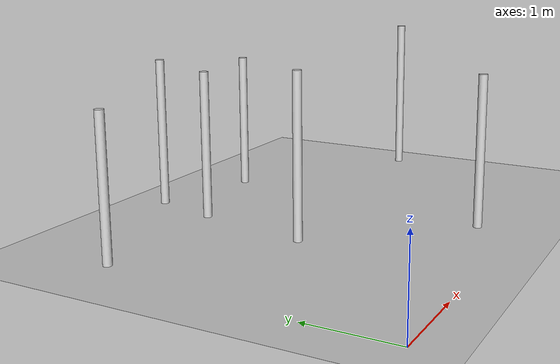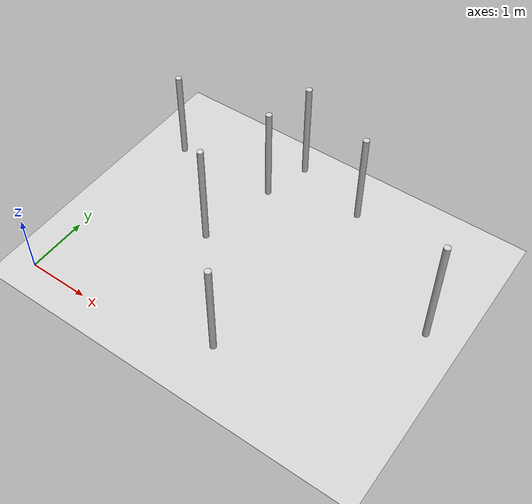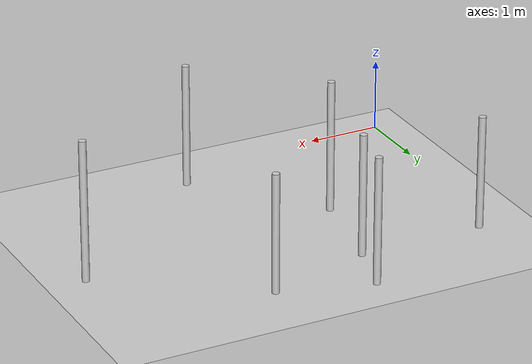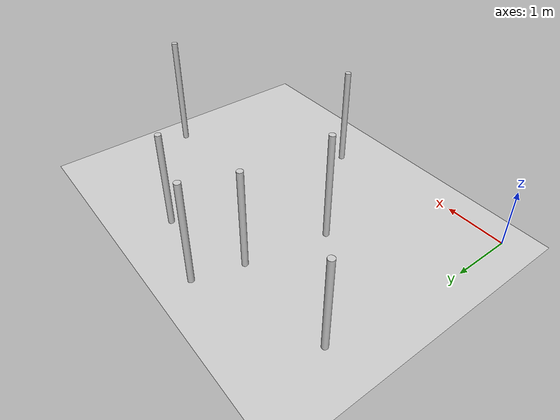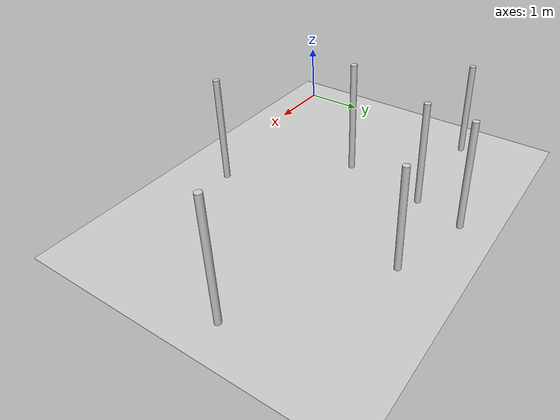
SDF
<?xml version="1.0" ?>
<sdf version="1.9">
  <world name="world_simple_3_world">
    <physics type="ode">
      <max_step_size>0.002</max_step_size>
      <real_time_factor>1.0</real_time_factor>
      <real_time_update_rate>1000</real_time_update_rate>
    </physics>
    <plugin name='gz::sim::systems::Physics' filename='libgz-sim-physics-system.so'/>
    <plugin name='gz::sim::systems::UserCommands' filename='libgz-sim-user-commands-system.so'/>
    <plugin name='gz::sim::systems::SceneBroadcaster' filename='libgz-sim-scene-broadcaster-system.so'/>
    <plugin name='gz::sim::systems::Contact' filename='libgz-sim-contact-system.so'/>
    <plugin name='gz::sim::systems::Imu' filename='libgz-sim-imu-system.so'/>
    <plugin name='gz::sim::systems::AirPressure' filename='libgz-sim-air-pressure-system.so'/>
    <plugin name='gz::sim::systems::Sensors' filename='libgz-sim-sensors-system.so'>
      <render_engine>ogre2</render_engine>
    </plugin>
    <gravity>0 0 -9.80665</gravity>
    <magnetic_field>6e-06 2.3e-05 -4.2e-05</magnetic_field>
    <atmosphere type='adiabatic'/>
    <scene>
      <grid>false</grid>
      <ambient>0.4 0.4 0.4 1</ambient>
      <background>0.7 0.7 0.7 1</background>
      <shadows>false</shadows>
    </scene>
    <model name="ground_plane">
      <pose>60 60 0 0 0 0</pose>
      <static>true</static>
      <link name="link">
        <collision name="collision">
          <geometry>
            <plane>
              <normal>0 0 1</normal>
              <size>150 150</size>
            </plane>
          </geometry>
        </collision>
        <visual name="visual">
          <geometry>
            <plane>
              <normal>0 0 1</normal>
              <size>150 150</size>
            </plane>
          </geometry>
          <material>
            <ambient>0.8 0.8 0.8 1</ambient>
            <diffuse>0.8 0.8 0.8 1</diffuse>
            <specular>0.8 0.8 0.8 1</specular>
          </material>
        </visual>
      </link>
    </model>

    <include>
      <pose>0 0 0 0 0 0</pose>
      <uri>model://world_simple_3</uri>
    </include>

    <light type="directional" name="sun">
      <cast_shadows>false</cast_shadows>
      <pose>0 0 100 0 0 0</pose>
      <diffuse>0.8 0.8 0.8 1</diffuse>
      <specular>0.2 0.2 0.2 1</specular>
      <attenuation>
        <range>1000</range>
        <constant>0.9</constant>
        <linear>0.01</linear>
        <quadratic>0.001</quadratic>
      </attenuation>
      <direction>-0.5 0.1 -0.9</direction>
    </light>
  </world>
</sdf>

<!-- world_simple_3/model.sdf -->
<sdf version="1.9">
  <model name="world_simple_3">
    <static>true</static>
    <link name="link">
      <collision name="collision">
        <geometry>
          <mesh>
            <uri>model://world_simple_3/meshes/world_simple_3.stl</uri>
          </mesh>
        </geometry>
      </collision>
      <visual name="visual">
        <geometry>
          <mesh>
            <uri>model://world_simple_3/meshes/world_simple_3.stl</uri>
          </mesh>
        </geometry>
        <material>
            <ambient>0.8 0.8 0.8 1</ambient>
            <diffuse>0.8 0.8 0.8 1</diffuse>
            <specular>0.8 0.8 0.8 1</specular>
        </material>
      </visual>
    </link>
  </model>
</sdf>
